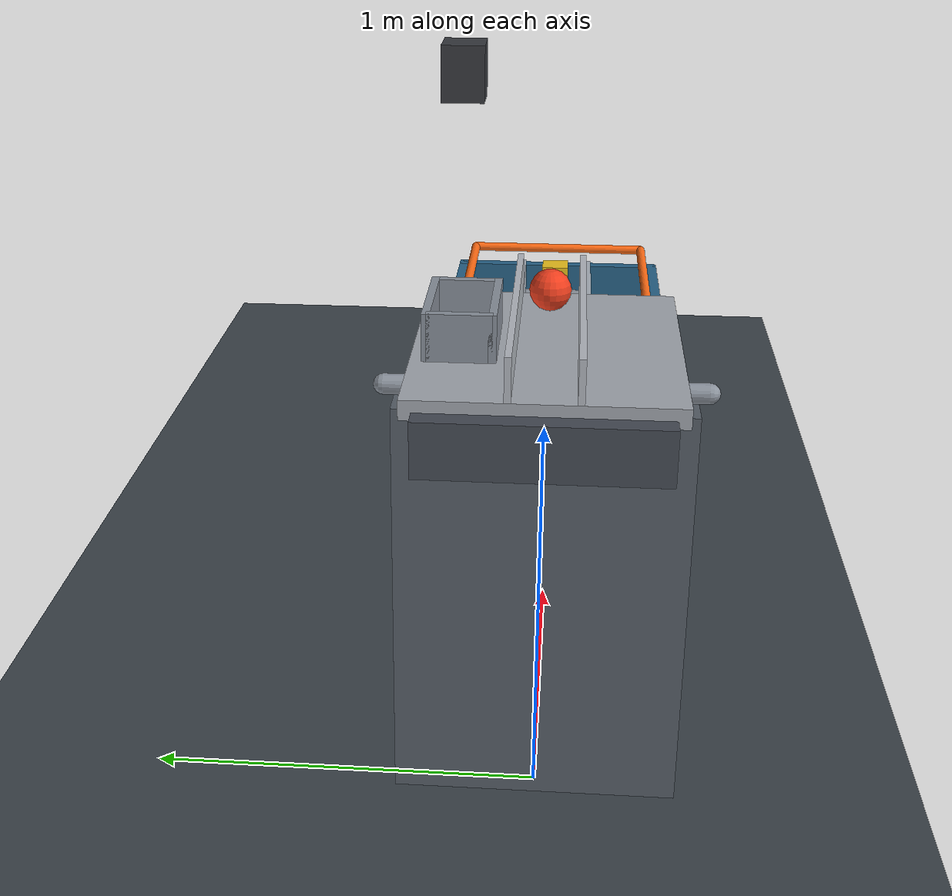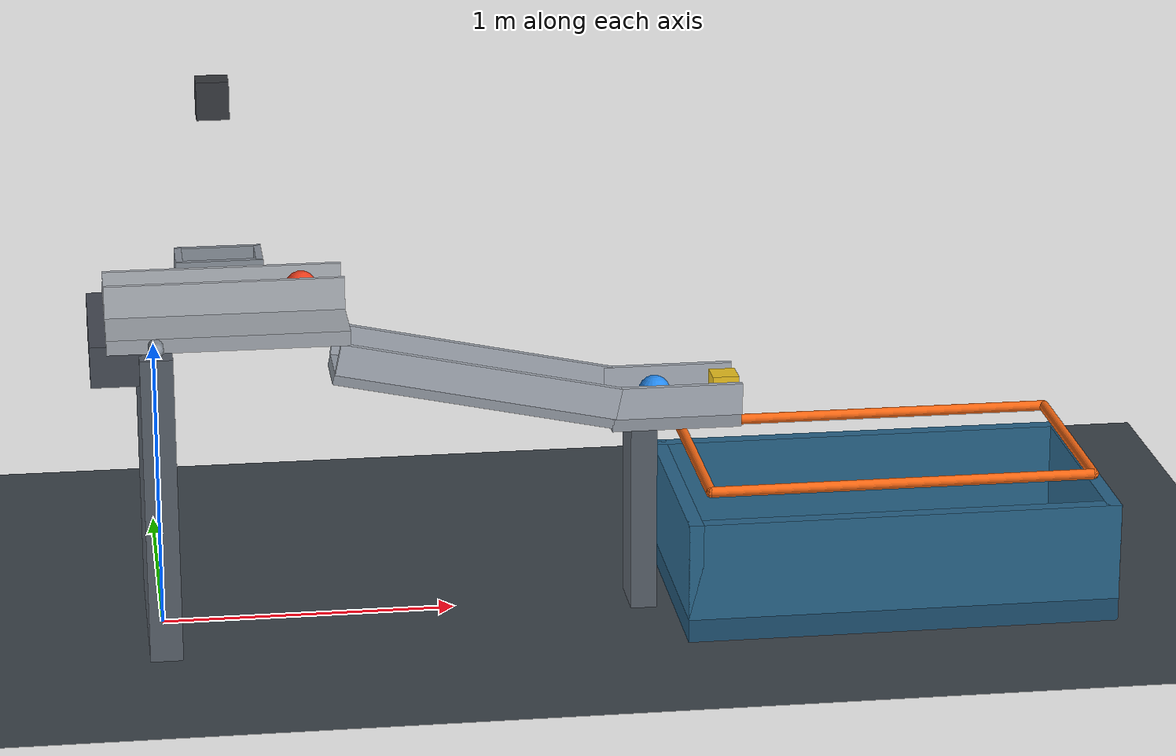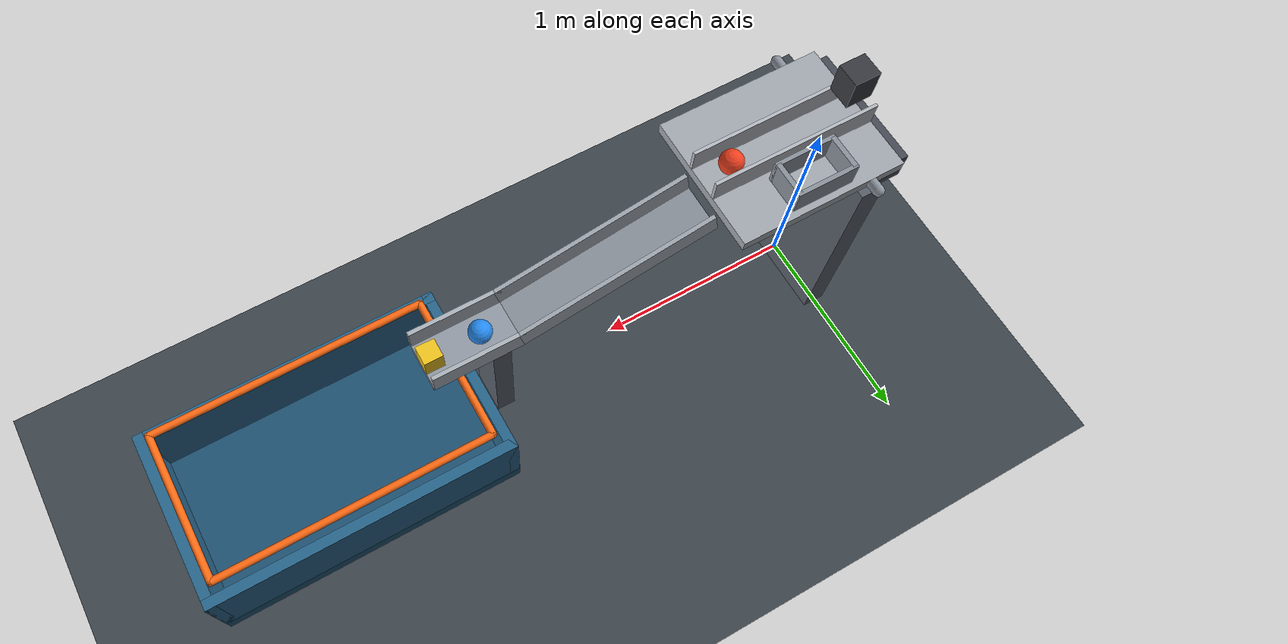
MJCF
<mujoco model="weight_tray_ball_chain">
  <compiler angle="degree" autolimits="true"/>
  <option timestep="0.002" gravity="0 0 -9.81" integrator="implicitfast" solver="Newton" iterations="80" cone="elliptic" impratio="5"/>
  <size nconmax="300" njmax="1000"/>
  <visual>
    <headlight ambient="0.35 0.35 0.35" diffuse="0.75 0.75 0.75" specular="0.2 0.2 0.2"/>
  </visual>

  <worldbody>
    <light name="overhead" pos="1.2 -2 5" dir="0 0 -1" directional="true"/>
    <geom name="floor" type="plane" size="5 3 0.1" rgba="0.24 0.27 0.30 1" friction="0.8 0.02 0.02" condim="6"/>

    <body name="tray_support" pos="0 0 0">
      <geom name="tray_support_post" type="box" pos="0 0 0.53" size="0.055 0.36 0.53" rgba="0.35 0.38 0.42 1"/>
      <geom name="tray_support_axle" type="capsule" fromto="0 -0.38 1.1 0 0.38 1.1" size="0.025" rgba="0.55 0.58 0.62 1" contype="0" conaffinity="0"/>
    </body>

    <!-- Positive hinge rotation lowers the outlet. The counterweight holds the unloaded tray at its upper stop. -->
    <body name="tray" pos="0 0 1.1">
      <joint name="tray_hinge" type="hinge" axis="0 1 0" range="0 20" damping="0.35" frictionloss="0.02" armature="0.005" solreflimit="0.015 1"/>
      <geom name="tray_deck" type="box" pos="0.24 0 0" size="0.4 0.33 0.025" mass="0.16" rgba="0.65 0.67 0.70 1" friction="0.45 0.005 0.001" condim="6" solref="0.01 1"/>
      <geom name="tray_counterweight" type="box" pos="-0.13 0 -0.075" size="0.085 0.30 0.07" mass="1.25" rgba="0.28 0.30 0.34 1" friction="0.45 0.005 0.001" condim="6"/>
      <geom name="tray_ball_rail_left" type="box" pos="0.24 -0.083 0.08" size="0.4 0.008 0.055" mass="0.022" rgba="0.72 0.74 0.77 1" friction="0.35 0.005 0.001" condim="6"/>
      <geom name="tray_ball_rail_right" type="box" pos="0.24 0.083 0.08" size="0.4 0.008 0.055" mass="0.022" rgba="0.72 0.74 0.77 1" friction="0.35 0.005 0.001" condim="6"/>
      <geom name="tray_weight_pocket_back" type="box" pos="0.10 0.21 0.085" size="0.012 0.08 0.06" mass="0.015" rgba="0.55 0.58 0.62 1" friction="0.45 0.005 0.001" condim="6"/>
      <geom name="tray_weight_pocket_front" type="box" pos="0.37 0.21 0.085" size="0.012 0.08 0.06" mass="0.015" rgba="0.55 0.58 0.62 1" friction="0.45 0.005 0.001" condim="6"/>
      <geom name="tray_weight_pocket_inner" type="box" pos="0.235 0.13 0.085" size="0.147 0.01 0.06" mass="0.02" rgba="0.55 0.58 0.62 1" friction="0.45 0.005 0.001" condim="6"/>
      <geom name="tray_weight_pocket_outer" type="box" pos="0.235 0.29 0.085" size="0.147 0.01 0.06" mass="0.02" rgba="0.55 0.58 0.62 1" friction="0.45 0.005 0.001" condim="6"/>
    </body>

    <!-- The weight's lower face starts exactly 0.6 m above the tray deck. -->
    <body name="weight" pos="0.23 0.21 1.79">
      <freejoint name="weight_free"/>
      <geom name="weight_geom" type="box" size="0.055 0.05 0.065" mass="1.0" rgba="0.22 0.23 0.25 1" friction="0.45 0.01 0.002" condim="6" solref="0.01 1"/>
    </body>

    <body name="ball1" pos="0.50 0 1.18">
      <freejoint name="ball1_free"/>
      <geom name="ball1_geom" type="sphere" size="0.055" mass="0.12" rgba="0.95 0.25 0.12 1" friction="0.4 0.005 0.0015" condim="6" solref="0.01 1"/>
    </body>

    <!-- This chute meets the tray outlet when the tray reaches its lower stop. -->
    <body name="transfer_chute" pos="1.0708 0 0.7831" euler="0 12 0">
      <geom name="transfer_chute_deck" type="box" size="0.486 0.105 0.02" rgba="0.58 0.61 0.65 1" friction="0.35 0.005 0.001" condim="6" solref="0.01 1"/>
      <geom name="transfer_chute_rail_left" type="box" pos="0 -0.115 0.075" size="0.486 0.01 0.055" rgba="0.68 0.71 0.75 1" friction="0.3 0.005 0.001" condim="6"/>
      <geom name="transfer_chute_rail_right" type="box" pos="0 0.115 0.075" size="0.486 0.01 0.055" rgba="0.68 0.71 0.75 1" friction="0.3 0.005 0.001" condim="6"/>
    </body>

    <body name="launch_shelf" pos="0 0 0">
      <geom name="launch_shelf_deck" type="box" pos="1.7625 0 0.675" size="0.2225 0.105 0.025" rgba="0.58 0.61 0.65 1" friction="0.22 0.005 0.001" condim="6" solref="0.01 1"/>
      <geom name="launch_shelf_rail_left" type="box" pos="1.7625 -0.115 0.755" size="0.2225 0.01 0.055" rgba="0.68 0.71 0.75 1" friction="0.3 0.005 0.001" condim="6"/>
      <geom name="launch_shelf_rail_right" type="box" pos="1.7625 0.115 0.755" size="0.2225 0.01 0.055" rgba="0.68 0.71 0.75 1" friction="0.3 0.005 0.001" condim="6"/>
      <geom name="launch_shelf_support" type="box" pos="1.65 0 0.325" size="0.045 0.10 0.325" rgba="0.35 0.38 0.42 1"/>
    </body>

    <body name="ball2" pos="1.70 0 0.755">
      <freejoint name="ball2_free"/>
      <geom name="ball2_geom" type="sphere" size="0.055" mass="0.14" rgba="0.15 0.55 0.95 1" friction="0.4 0.005 0.0015" condim="6" solref="0.01 1"/>
    </body>

    <body name="block" pos="1.94 0 0.755">
      <freejoint name="block_free"/>
      <geom name="block_geom" type="box" size="0.045 0.045 0.055" mass="0.045" rgba="0.95 0.78 0.12 1" friction="0.22 0.005 0.001" condim="6" solref="0.01 1"/>
    </body>

    <!-- A horizontal drop hoop surrounds the payload's fall path. -->
    <body name="hoop" pos="0 0 0">
      <geom name="hoop_front" type="capsule" fromto="1.84 -0.36 0.51 1.84 0.36 0.51" size="0.018" rgba="1 0.42 0.08 1" friction="0.4 0.01 0.003" condim="6"/>
      <geom name="hoop_back" type="capsule" fromto="3.16 -0.36 0.51 3.16 0.36 0.51" size="0.018" rgba="1 0.42 0.08 1" friction="0.4 0.01 0.003" condim="6"/>
      <geom name="hoop_left" type="capsule" fromto="1.84 -0.36 0.51 3.16 -0.36 0.51" size="0.018" rgba="1 0.42 0.08 1" friction="0.4 0.01 0.003" condim="6"/>
      <geom name="hoop_right" type="capsule" fromto="1.84 0.36 0.51 3.16 0.36 0.51" size="0.018" rgba="1 0.42 0.08 1" friction="0.4 0.01 0.003" condim="6"/>
    </body>

    <body name="bin" pos="0 0 0">
      <geom name="bin_bottom" type="box" pos="2.50 0 0.04" size="0.745 0.435 0.04" rgba="0.12 0.32 0.45 1" friction="0.9 0.02 0.018" condim="6" solref="0.012 1"/>
      <geom name="bin_front" type="box" pos="1.78 0 0.25" size="0.025 0.435 0.17" rgba="0.16 0.40 0.55 1" friction="0.9 0.02 0.018" condim="6" solref="0.012 1"/>
      <geom name="bin_back" type="box" pos="3.22 0 0.25" size="0.025 0.435 0.17" rgba="0.16 0.40 0.55 1" friction="0.9 0.02 0.018" condim="6" solref="0.012 1"/>
      <geom name="bin_left" type="box" pos="2.50 -0.41 0.25" size="0.745 0.025 0.17" rgba="0.16 0.40 0.55 1" friction="0.9 0.02 0.018" condim="6" solref="0.012 1"/>
      <geom name="bin_right" type="box" pos="2.50 0.41 0.25" size="0.745 0.025 0.17" rgba="0.16 0.40 0.55 1" friction="0.9 0.02 0.018" condim="6" solref="0.012 1"/>
    </body>
  </worldbody>

  <contact>
    <exclude body1="tray" body2="tray_support"/>
    <exclude body1="tray" body2="transfer_chute"/>
  </contact>

  <keyframe>
    <key name="start"/>
  </keyframe>
</mujoco>
